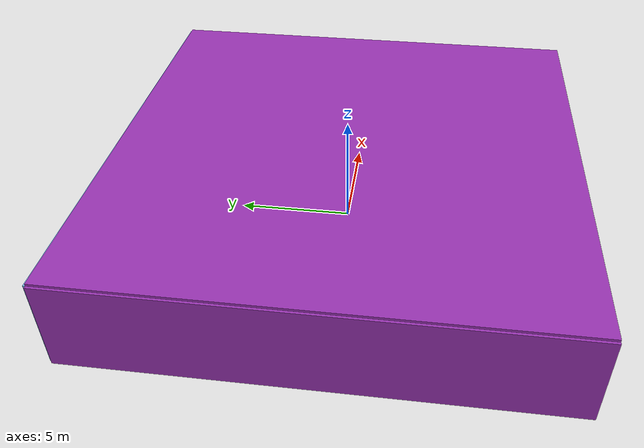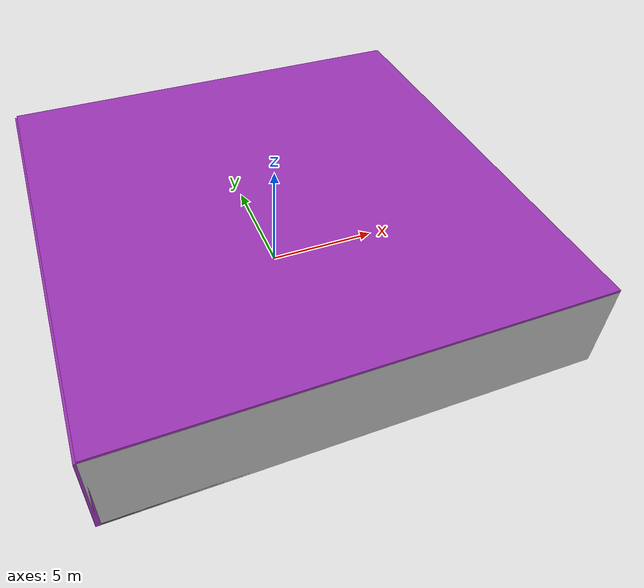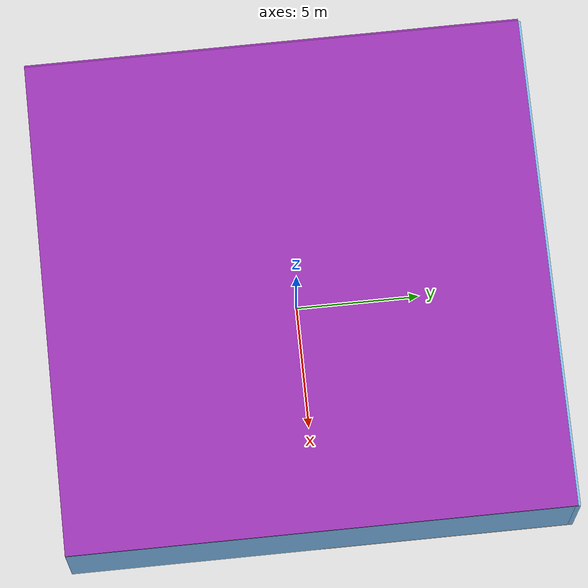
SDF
<sdf version="1.4">
 <world name="default">
  <physics type="ode">
   <max_step_size>0.001</max_step_size>
   <real_time_factor>1</real_time_factor>
   <real_time_update_rate>1000</real_time_update_rate>
   <gravity>0 0 -9.8</gravity>
  </physics>
  <scene><ambient>0.4 0.4 0.4 1</ambient><background>0.7 0.7 0.7 1</background><shadows>1</shadows></scene>
  <model name="Surrounding">
   <static>1</static>
   <link name="Ceiling">
    <collision name="Ceiling_Collision"><geometry><box><size>20 20 0.1</size></box></geometry></collision>
    <visual name="Ceiling_Visual">
     <geometry><box><size>20 20 0.1</size></box></geometry>
     <material>
      <script><uri>file://media/materials/scripts/gazebo.material</uri><name>Gazebo/Purple</name></script>
     </material>
    </visual>
    <pose>0 0 4.05 0 0 0</pose>
   </link>
   <link name="Wall_South">
    <collision name="Wall_South_Collision">
     <geometry><box><size>20 0 4</size></box></geometry>
     <pose>0 0 2 0 -0 0</pose>
    </collision>
    <visual name="Wall_South_Visual">
     <pose>0 0 2 0 -0 0</pose>
     <geometry><box><size>20 0 4</size></box></geometry>
     <material>
      <script><uri>file://media/materials/scripts/gazebo.material</uri><name>Gazebo/PioneerBody</name></script>
     </material>
    </visual>
    <velocity_decay><linear>0</linear><angular>0</angular></velocity_decay>
    <pose>0 -10 0 0 -0 0</pose>
   </link>
   <link name="Wall_East">
    <collision name="Wall_21_Collision">
     <geometry><box><size>20 0 4</size></box></geometry>
     <pose>0 0 2 0 -0 0</pose>
    </collision>
    <visual name="Wall_21_Visual">
     <pose>0 0 2 0 -0 0</pose>
     <geometry><box><size>20 0 4</size></box></geometry>
     <material>
      <script><uri>file://media/materials/scripts/gazebo.material</uri><name>Gazebo/SkyBlue</name></script>
     </material>
    </visual>
    <velocity_decay><linear>0</linear><angular>0</angular></velocity_decay>
    <pose>10 0 0 0 -0 1.5708</pose>
   </link>
   <link name="Wall_North">
    <collision name="Wall_22_Collision">
     <geometry><box><size>20 0.2 4</size></box></geometry>
     <pose>0 0 2 0 -0 0</pose>
    </collision>
    <visual name="Wall_22_Visual">
     <pose>0 0 2 0 -0 0</pose>
     <geometry><box><size>20 0.2 4</size></box></geometry>
     <material>
      <script><uri>file://media/materials/scripts/gazebo.material</uri><name>Gazebo/SkyBlue</name></script>
     </material>
    </visual>
    <velocity_decay><linear>0</linear><angular>0</angular></velocity_decay>
    <pose>0 10 0 0 -0 0</pose>
   </link>
   <link name="Wall_West">
    <collision name="Wall_23_Collision">
     <geometry><box><size>20 0.2 4</size></box></geometry>
     <pose>0 0 2 0 -0 0</pose>
    </collision>
    <visual name="Wall_23_Visual">
     <pose>0 0 2 0 -0 0</pose>
     <geometry><box><size>20 0.2 4</size></box></geometry>
     <material>
      <script><uri>file://media/materials/scripts/gazebo.material</uri><name>Gazebo/PurpleGlow</name></script>
     </material>
    </visual>
    <velocity_decay><linear>0</linear><angular>0</angular></velocity_decay>
    <pose>-10 0 0 0 0 -1.5708</pose>
   </link>
   <link name="Ground_link">
    <collision name="collision">
     <pose>0 0 .05 0 -0 0</pose>
     <geometry><box><size>20 20 0.1</size></box></geometry>
    </collision>
    <visual name="visual">
     <pose>0 0 .05 0 -0 0</pose>
     <geometry><box><size>20 20 0.1</size></box></geometry>
     <material>
      <script><uri>file://media/materials/scripts/gazebo.material</uri><name>Gazebo/FlatBlack</name></script>
     </material>
    </visual>
   </link>
   <static>1</static>
  </model>
  <spherical_coordinates>
   <surface_model>EARTH_WGS84</surface_model>
   <latitude_deg>0</latitude_deg>
   <longitude_deg>0</longitude_deg>
   <elevation>0</elevation>
   <heading_deg>0</heading_deg>
  </spherical_coordinates>
  <light name="lightball_0" type="diffuse">
   <diffuse>0.8 0.8 0.8 1</diffuse>
   <specular>0.2 0.2 0.2 1</specular>
   <attenuation>
    <range>100</range>
    <constant>0.7</constant>
    <linear>0.01</linear>
    <quadratic>0.001</quadratic>
   </attenuation>
   <direction>-0.5 0.1 -0.9</direction>
   <pose>6.19512671226 -3.28679994587 3.11818278342 0 0 0</pose>
  </light>
  <light name="lightball_1" type="diffuse">
   <diffuse>0.8 0.8 0.8 1</diffuse>
   <specular>0.2 0.2 0.2 1</specular>
   <attenuation>
    <range>100</range>
    <constant>0.7</constant>
    <linear>0.01</linear>
    <quadratic>0.001</quadratic>
   </attenuation>
   <direction>-0.5 0.1 -0.9</direction>
   <pose>3.97139974167 -9.81043775518 2.43200683353 0 0 0</pose>
  </light>
  <light name="lightball_2" type="diffuse">
   <diffuse>0.8 0.8 0.8 1</diffuse>
   <specular>0.2 0.2 0.2 1</specular>
   <attenuation>
    <range>100</range>
    <constant>0.7</constant>
    <linear>0.01</linear>
    <quadratic>0.001</quadratic>
   </attenuation>
   <direction>-0.5 0.1 -0.9</direction>
   <pose>3.85806840969 -2.95085302035 2.74754797269 0 0 0</pose>
  </light>
  <light name="lightball_3" type="diffuse">
   <diffuse>0.8 0.8 0.8 1</diffuse>
   <specular>0.2 0.2 0.2 1</specular>
   <attenuation>
    <range>100</range>
    <constant>0.7</constant>
    <linear>0.01</linear>
    <quadratic>0.001</quadratic>
   </attenuation>
   <direction>-0.5 0.1 -0.9</direction>
   <pose>-8.28353193157 -3.89509201275 0.673208697439 0 0 0</pose>
  </light>
  <light name="lightball_4" type="diffuse">
   <diffuse>0.8 0.8 0.8 1</diffuse>
   <specular>0.2 0.2 0.2 1</specular>
   <attenuation>
    <range>100</range>
    <constant>0.7</constant>
    <linear>0.01</linear>
    <quadratic>0.001</quadratic>
   </attenuation>
   <direction>-0.5 0.1 -0.9</direction>
   <pose>-4.36731300464 -2.35172278875 1.09505652432 0 0 0</pose>
  </light>
  <light name="lightball_5" type="diffuse">
   <diffuse>0.8 0.8 0.8 1</diffuse>
   <specular>0.2 0.2 0.2 1</specular>
   <attenuation>
    <range>100</range>
    <constant>0.7</constant>
    <linear>0.01</linear>
    <quadratic>0.001</quadratic>
   </attenuation>
   <direction>-0.5 0.1 -0.9</direction>
   <pose>2.89764007396 -2.68921438939 2.05681567026 0 0 0</pose>
  </light>
  <light name="lightball_6" type="diffuse">
   <diffuse>0.8 0.8 0.8 1</diffuse>
   <specular>0.2 0.2 0.2 1</specular>
   <attenuation>
    <range>100</range>
    <constant>0.7</constant>
    <linear>0.01</linear>
    <quadratic>0.001</quadratic>
   </attenuation>
   <direction>-0.5 0.1 -0.9</direction>
   <pose>5.37964510979 -4.64668490374 3.64359630629 0 0 0</pose>
  </light>
  <light name="lightball_7" type="diffuse">
   <diffuse>0.8 0.8 0.8 1</diffuse>
   <specular>0.2 0.2 0.2 1</specular>
   <attenuation>
    <range>100</range>
    <constant>0.7</constant>
    <linear>0.01</linear>
    <quadratic>0.001</quadratic>
   </attenuation>
   <direction>-0.5 0.1 -0.9</direction>
   <pose>-9.95858885869 3.60101309326 1.58191064516 0 0 0</pose>
  </light>
  <light name="lightball_8" type="diffuse">
   <diffuse>0.8 0.8 0.8 1</diffuse>
   <specular>0.2 0.2 0.2 1</specular>
   <attenuation>
    <range>100</range>
    <constant>0.7</constant>
    <linear>0.01</linear>
    <quadratic>0.001</quadratic>
   </attenuation>
   <direction>-0.5 0.1 -0.9</direction>
   <pose>-8.94435936328 -4.58661966124 1.73709857425 0 0 0</pose>
  </light>
  <light name="lightball_9" type="diffuse">
   <diffuse>0.8 0.8 0.8 1</diffuse>
   <specular>0.2 0.2 0.2 1</specular>
   <attenuation>
    <range>100</range>
    <constant>0.7</constant>
    <linear>0.01</linear>
    <quadratic>0.001</quadratic>
   </attenuation>
   <direction>-0.5 0.1 -0.9</direction>
   <pose>1.4012827065 1.68670807065 2.00552943695 0 0 0</pose>
  </light>
  <light name="lightball_10" type="diffuse">
   <diffuse>0.8 0.8 0.8 1</diffuse>
   <specular>0.2 0.2 0.2 1</specular>
   <attenuation>
    <range>100</range>
    <constant>0.7</constant>
    <linear>0.01</linear>
    <quadratic>0.001</quadratic>
   </attenuation>
   <direction>-0.5 0.1 -0.9</direction>
   <pose>7.40126423459 2.2792926533 3.76348435831 0 0 0</pose>
  </light>
  <light name="lightball_11" type="diffuse">
   <diffuse>0.8 0.8 0.8 1</diffuse>
   <specular>0.2 0.2 0.2 1</specular>
   <attenuation>
    <range>100</range>
    <constant>0.7</constant>
    <linear>0.01</linear>
    <quadratic>0.001</quadratic>
   </attenuation>
   <direction>-0.5 0.1 -0.9</direction>
   <pose>-4.92577487416 0.115824149001 1.28283915506 0 0 0</pose>
  </light>
  <light name="lightball_12" type="diffuse">
   <diffuse>0.8 0.8 0.8 1</diffuse>
   <specular>0.2 0.2 0.2 1</specular>
   <attenuation>
    <range>100</range>
    <constant>0.7</constant>
    <linear>0.01</linear>
    <quadratic>0.001</quadratic>
   </attenuation>
   <direction>-0.5 0.1 -0.9</direction>
   <pose>7.63944225544 4.9886432897 2.95632185199 0 0 0</pose>
  </light>
  <light name="lightball_13" type="diffuse">
   <diffuse>0.8 0.8 0.8 1</diffuse>
   <specular>0.2 0.2 0.2 1</specular>
   <attenuation>
    <range>100</range>
    <constant>0.7</constant>
    <linear>0.01</linear>
    <quadratic>0.001</quadratic>
   </attenuation>
   <direction>-0.5 0.1 -0.9</direction>
   <pose>6.43339081809 -4.95564320786 2.77354133869 0 0 0</pose>
  </light>
  <include>
   <uri>model://construction_cone</uri>
   <pose>-4.96164918722 -7.45843684287 0 0 0 1.56733870894</pose>
  </include>
  <include><uri>model://cabinet</uri><pose>-4.46152937233 -1.03129869544 0 0 0 0.775599705399</pose></include>
  <include>
   <uri>model://robocup_3Dsim_goal</uri>
   <pose>-5.18159143816 4.45055891797 0 0 0 2.14480702039</pose>
  </include>
  <include>
   <uri>model://textured_shapes</uri>
   <pose>-1.26665791721 7.94528451973 0 0 0 1.0578552035</pose>
  </include>
 </world>
</sdf>

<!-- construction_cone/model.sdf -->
<sdf version="1.5">
  <model name="Construction Cone">
    <link name="link">
      <collision name="collision">
        <geometry>
          <mesh>
            <scale>10 10 10</scale>
            <uri>file://isr-testbed/construction_cone/meshes/construction_cone.dae</uri>
          </mesh>
        </geometry>
      </collision>
      <visual name="visual">
        <geometry>
          <mesh>
            <scale>10 10 10</scale>
            <uri>file://isr-testbed/construction_cone/meshes/construction_cone.dae</uri>
          </mesh>
        </geometry>
      </visual>
    </link>
  </model>
</sdf>

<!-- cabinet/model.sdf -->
<sdf version="1.5">
  <model name="cabinet">
    <static>true</static>
    <link name="cabinet_bottom_plate">
      <inertial>
        <pose>0 0 -1 0 0 0</pose>
        <inertia>
          <ixx>2.050000</ixx>
          <ixy>0</ixy>
          <ixz>0</ixz>
          <iyy>2.050000</iyy>
          <iyz>0</iyz>
          <izz>2.050000</izz>
        </inertia>
        <mass>25.000000</mass>
      </inertial>
      <collision name="cabinet_bottom_plate_geom">
        <pose>0 0 0.010000 0 0 0</pose>
        <geometry>
          <box>
            <size>0.450000 0.450000 0.020000</size>
          </box>
        </geometry>
      </collision>
      <visual name="cabinet_bottom_plate_geom_visual">
        <pose>0 0 0.010000 0 0 0</pose>
        <geometry>
          <box>
            <size>0.450000 0.450000 0.020000</size>
          </box>
        </geometry>
        <material>
          <script>
            <uri>model://media/materials/scripts/gazebo.material</uri>
            <name>Gazebo/Wood</name>
          </script>
        </material>
      </visual>
      <collision name="cabinet_bottom_plate_geom_cabinet_back_plate">
        <pose>0.235000 0 0.510000 0 0 0</pose>
        <geometry>
          <box>
            <size>0.020000 0.450000 1.020000</size>
          </box>
        </geometry>
      </collision>
      <visual name="cabinet_bottom_plate_geom_cabinet_back_plate_visual">
        <pose>0.235000 0 0.510000 0 0 0</pose>
        <geometry>
          <box>
            <size>0.020000 0.450000 1.020000</size>
          </box>
        </geometry>
        <material>
          <script>
            <uri>model://media/materials/scripts/gazebo.material</uri>
            <name>Gazebo/Wood</name>
          </script>
        </material>
      </visual>
      <collision name="cabinet_bottom_plate_geom_cabinet_left_plate">
        <pose>0 0.235000 0.510000 0 0 0</pose>
        <geometry>
          <box>
            <size>0.450000 0.020000 1.020000</size>
          </box>
        </geometry>
      </collision>
      <visual name="cabinet_bottom_plate_geom_cabinet_left_plate_visual">
        <pose>0 0.235000 0.510000 0 0 0</pose>
        <geometry>
          <box>
            <size>0.450000 0.020000 1.020000</size>
          </box>
        </geometry>
        <material>
          <script>
            <uri>model://media/materials/scripts/gazebo.material</uri>
            <name>Gazebo/Wood</name>
          </script>
        </material>
      </visual>
      <collision name="cabinet_bottom_plate_geom_cabinet_middle_plate">
        <pose>0 0 0.510000 0 0 0</pose>
        <geometry>
          <box>
            <size>0.450000 0.450000 0.020000</size>
          </box>
        </geometry>
      </collision>
      <visual name="cabinet_bottom_plate_geom_cabinet_middle_plate_visual">
        <pose>0 0 0.510000 0 0 0</pose>
        <geometry>
          <box>
            <size>0.450000 0.450000 0.020000</size>
          </box>
        </geometry>
        <material>
          <script>
            <uri>model://media/materials/scripts/gazebo.material</uri>
            <name>Gazebo/Wood</name>
          </script>
        </material>
      </visual>
      <collision name="cabinet_bottom_plate_geom_cabinet_right_plate">
        <pose>0 -0.235000 0.510000 0 0 0</pose>
        <geometry>
          <box>
            <size>0.450000 0.020000 1.020000</size>
          </box>
        </geometry>
      </collision>
      <visual name="cabinet_bottom_plate_geom_cabinet_right_plate_visual">
        <pose>0 -0.235000 0.510000 0 0 0</pose>
        <geometry>
          <box>
            <size>0.450000 0.020000 1.020000</size>
          </box>
        </geometry>
        <material>
          <script>
            <uri>model://media/materials/scripts/gazebo.material</uri>
            <name>Gazebo/Wood</name>
          </script>
        </material>
      </visual>
      <collision name="cabinet_bottom_plate_geom_cabinet_top_plate">
        <pose>0 0 1.010000 0 0 0</pose>
        <geometry>
          <box>
            <size>0.450000 0.450000 0.020000</size>
          </box>
        </geometry>
      </collision>
      <visual name="cabinet_bottom_plate_geom_cabinet_top_plate_visual">
        <pose>0 0 1.010000 0 0 0</pose>
        <geometry>
          <box>
            <size>0.450000 0.450000 0.020000</size>
          </box>
        </geometry>
        <material>
          <script>
            <uri>model://media/materials/scripts/gazebo.material</uri>
            <name>Gazebo/Wood</name>
          </script>
        </material>
      </visual>
    </link>
  </model>
</sdf>

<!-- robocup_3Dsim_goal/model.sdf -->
<sdf version="1.5">
  <model name="robocup_3d_goal">
    <static>true</static>
    <link name="left_post">
      <pose>0 1.05 0.45 0 0 0</pose>
      <collision name="collision">
        <geometry>
          <cylinder>
            <radius>0.05</radius>
            <length>0.9</length>
          </cylinder>
        </geometry>
      </collision>
      <visual name="visual">
        <geometry>
          <cylinder>
            <radius>0.05</radius>
            <length>0.9</length>
          </cylinder>
        </geometry>
        <material>
          <script>
            <uri>file://media/materials/scripts/gazebo.material</uri>
            <name>Gazebo/ZincYellow</name>
          </script>
        </material>
      </visual>
    </link>
    <link name="left_support_horiz_lower">
      <pose>0.30 1.05 0.01 0 0 0</pose>
      <collision name="collision">
        <geometry>
          <box>
            <size>0.50 0.02 0.02</size>
          </box>
        </geometry>
      </collision>
      <visual name="visual">
        <geometry>
          <box>
            <size>0.50 0.02 0.02</size>
          </box>
        </geometry>
        <material>
          <script>
            <uri>file://media/materials/scripts/gazebo.material</uri>
            <name>Gazebo/White</name>
          </script>
        </material>
      </visual>
    </link>
    <link name="left_support_horiz_upper">
      <pose>0.30 1.05 0.79 0 0 0</pose>
      <collision name="collision">
        <geometry>
          <box>
            <size>0.50 0.02 0.02</size>
          </box>
        </geometry>
      </collision>
      <visual name="visual">
        <geometry>
          <box>
            <size>0.50 0.02 0.02</size>
          </box>
        </geometry>
        <material>
          <script>
            <uri>file://media/materials/scripts/gazebo.material</uri>
            <name>Gazebo/White</name>
          </script>
        </material>
      </visual>
    </link>
    <link name="left_support_vertical">
      <pose>0.56 1.05 0.4 0 1.5708 0</pose>
      <collision name="collision">
        <geometry>
          <box>
            <size>0.80 0.02 0.02</size>
          </box>
        </geometry>
      </collision>
      <visual name="visual">
        <geometry>
          <box>
            <size>0.80 0.02 0.02</size>
          </box>
        </geometry>
        <material>
          <script>
            <uri>file://media/materials/scripts/gazebo.material</uri>
            <name>Gazebo/White</name>
          </script>
        </material>
      </visual>
    </link>
    <link name="right_support_horiz_lower">
      <pose>0.30 -1.05 0.01 0 0 0</pose>
      <collision name="collision">
        <geometry>
          <box>
            <size>0.50 0.02 0.02</size>
          </box>
        </geometry>
      </collision>
      <visual name="visual">
        <geometry>
          <box>
            <size>0.50 0.02 0.02</size>
          </box>
        </geometry>
        <material>
          <script>
            <uri>file://media/materials/scripts/gazebo.material</uri>
            <name>Gazebo/White</name>
          </script>
        </material>
      </visual>
    </link>
    <link name="right_support_horiz_upper">
      <pose>0.30 -1.05 0.79 0 0 0</pose>
      <collision name="collision">
        <geometry>
          <box>
            <size>0.50 0.02 0.02</size>
          </box>
        </geometry>
      </collision>
      <visual name="visual">
        <geometry>
          <box>
            <size>0.50 0.02 0.02</size>
          </box>
        </geometry>
        <material>
          <script>
            <uri>file://media/materials/scripts/gazebo.material</uri>
            <name>Gazebo/White</name>
          </script>
        </material>
      </visual>
    </link>
    <link name="right_support_vertical">
      <pose>0.56 -1.05 0.4 0 1.5708 0</pose>
      <collision name="collision">
        <geometry>
          <box>
            <size>0.80 0.02 0.02</size>
          </box>
        </geometry>
      </collision>
      <visual name="visual">
        <geometry>
          <box>
            <size>0.80 0.02 0.02</size>
          </box>
        </geometry>
        <material>
          <script>
            <uri>file://media/materials/scripts/gazebo.material</uri>
            <name>Gazebo/White</name>
          </script>
        </material>
      </visual>
    </link>
    <link name="center_support_horiz_lower">
      <pose>0.56 0 0.01 0 1.5708 0</pose>
      <collision name="collision">
        <geometry>
          <box>
            <size>0.02 2.08 0.02</size>
          </box>
        </geometry>
      </collision>
      <visual name="visual">
        <geometry>
          <box>
            <size>0.02 2.08 0.02</size>
          </box>
        </geometry>
        <material>
          <script>
            <uri>file://media/materials/scripts/gazebo.material</uri>
            <name>Gazebo/White</name>
          </script>
        </material>
      </visual>
    </link>
    <link name="center_support_horiz_upper">
      <pose>0.56 0 0.79 0 1.5708 0</pose>
      <collision name="collision">
        <geometry>
          <box>
            <size>0.02 2.08 0.02</size>
          </box>
        </geometry>
      </collision>
      <visual name="visual">
        <geometry>
          <box>
            <size>0.02 2.08 0.02</size>
          </box>
        </geometry>
        <material>
          <script>
            <uri>file://media/materials/scripts/gazebo.material</uri>
            <name>Gazebo/White</name>
          </script>
        </material>
      </visual>
    </link>
    <link name="right_post">
      <pose>0 -1.05 0.45 0 0 0</pose>
      <collision name="collision">
        <geometry>
          <cylinder>
            <radius>0.05</radius>
            <length>0.9</length>
          </cylinder>
        </geometry>
      </collision>
      <visual name="visual">
        <geometry>
          <cylinder>
            <radius>0.05</radius>
            <length>0.9</length>
          </cylinder>
        </geometry>
        <material>
          <script>
            <uri>file://media/materials/scripts/gazebo.material</uri>
            <name>Gazebo/ZincYellow</name>
          </script>
        </material>
      </visual>
    </link>
    <link name="crossbar">
      <pose>0 0 0.85 1.57 1.57 0</pose>
      <collision name="collision">
        <geometry>
          <cylinder>
            <radius>0.05</radius>
            <length>2.0</length>
          </cylinder>
        </geometry>
      </collision>
      <visual name="visual">
        <geometry>
          <cylinder>
            <radius>0.05</radius>
            <length>2.0</length>
          </cylinder>
        </geometry>
        <material>
          <script>
            <uri>file://media/materials/scripts/gazebo.material</uri>
            <name>Gazebo/ZincYellow</name>
          </script>
        </material>
      </visual>
    </link>
    <link name="center_net">
      <pose>0.56 0 0.40 0 0 0</pose>
      <collision name="collision">
        <geometry>
          <box>
            <size>0.01 2.1 0.80</size>
          </box>
        </geometry>
      </collision>
      <visual name="visual">
        <geometry>
          <box>
            <size>0.01 2.1 0.80</size>
          </box>
        </geometry>
        <material>
          <script>
            <uri>model://../model_source/models/robocup09_spl_field/materials/scripts/</uri>
            <uri>model://../model_source/models/robocup09_spl_field/materials/textures/</uri>
            <name>RoboCup/Net</name>
          </script>
        </material>
      </visual>
    </link>
    <link name="left_net">
      <pose>0.30 1.05 0.40 0 0 0</pose>
      <collision name="collision">
        <geometry>
          <box>
            <size>0.50 0.01 0.76</size>
          </box>
        </geometry>
      </collision>
      <visual name="visual">
        <geometry>
          <box>
            <size>0.50 0.01 0.76</size>
          </box>
        </geometry>
        <material>
          <script>
            <uri>model://../model_source/models/robocup09_spl_field/materials/scripts/</uri>
            <uri>model://../model_source/models/robocup09_spl_field/materials/textures/</uri>
            <name>RoboCup/Net</name>
          </script>
        </material>
      </visual>
    </link>
    <link name="right_net">
      <pose>0.30 -1.05 0.40 0 0 0</pose>
      <collision name="collision">
        <geometry>
          <box>
            <size>0.50 0.01 0.76</size>
          </box>
        </geometry>
      </collision>
      <visual name="visual">
        <geometry>
          <box>
            <size>0.50 0.01 0.76</size>
          </box>
        </geometry>
        <material>
          <script>
            <uri>model://../model_source/models/robocup09_spl_field/materials/scripts/</uri>
            <uri>model://../model_source/models/robocup09_spl_field/materials/textures/</uri>
            <name>RoboCup/Net</name>
          </script>
        </material>
      </visual>
    </link>
  </model>
</sdf>

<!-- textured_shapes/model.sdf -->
<sdf version="1.6">
  <model name="textured_shapes">
    <pose>0 0 0.5 0 0 0</pose>
    <link name="box">
      <pose>0 -1.5 0 0 0 0</pose>
      <collision name="collision">
        <geometry>
          <box>
            <size>1 1 1</size>
          </box>
        </geometry>
      </collision>
      <visual name="visual">
        <geometry>
          <box>
            <size>1 1 1</size>
          </box>
        </geometry>
        <material>
          <script>
            <uri>model://../model_source/models/textured_shapes/materials/scripts</uri>
            <uri>model://../model_source/models/textured_shapes/materials/textures</uri>
            <name>TexturedShape/Squares</name>
          </script>
        </material>
      </visual>
    </link>
    <link name="sphere">
      <collision name="collision">
        <geometry>
          <sphere>
            <radius>0.5</radius>
          </sphere>
        </geometry>
      </collision>
      <visual name="visual">
        <geometry>
          <sphere>
            <radius>0.5</radius>
          </sphere>
        </geometry>
        <material>
          <script>
            <uri>model://../model_source/models/textured_shapes/materials/scripts</uri>
            <uri>model://../model_source/models/textured_shapes/materials/textures</uri>
            <name>TexturedShape/Squares</name>
          </script>
        </material>
      </visual>
    </link>
    <link name="cylinder">
      <pose>0 1.5 0 0 0 0</pose>
      <collision name="collision">
        <geometry>
          <cylinder>
            <radius>0.5</radius>
            <length>1</length>
          </cylinder>
        </geometry>
      </collision>
      <visual name="visual">
        <geometry>
          <cylinder>
            <radius>0.5</radius>
            <length>1</length>
          </cylinder>
        </geometry>
        <material>
          <script>
            <uri>model://../model_source/models/textured_shapes/materials/scripts</uri>
            <uri>model://../model_source/models/textured_shapes/materials/textures</uri>
            <name>TexturedShape/Squares</name>
          </script>
        </material>
      </visual>
    </link>
  </model>
</sdf>
